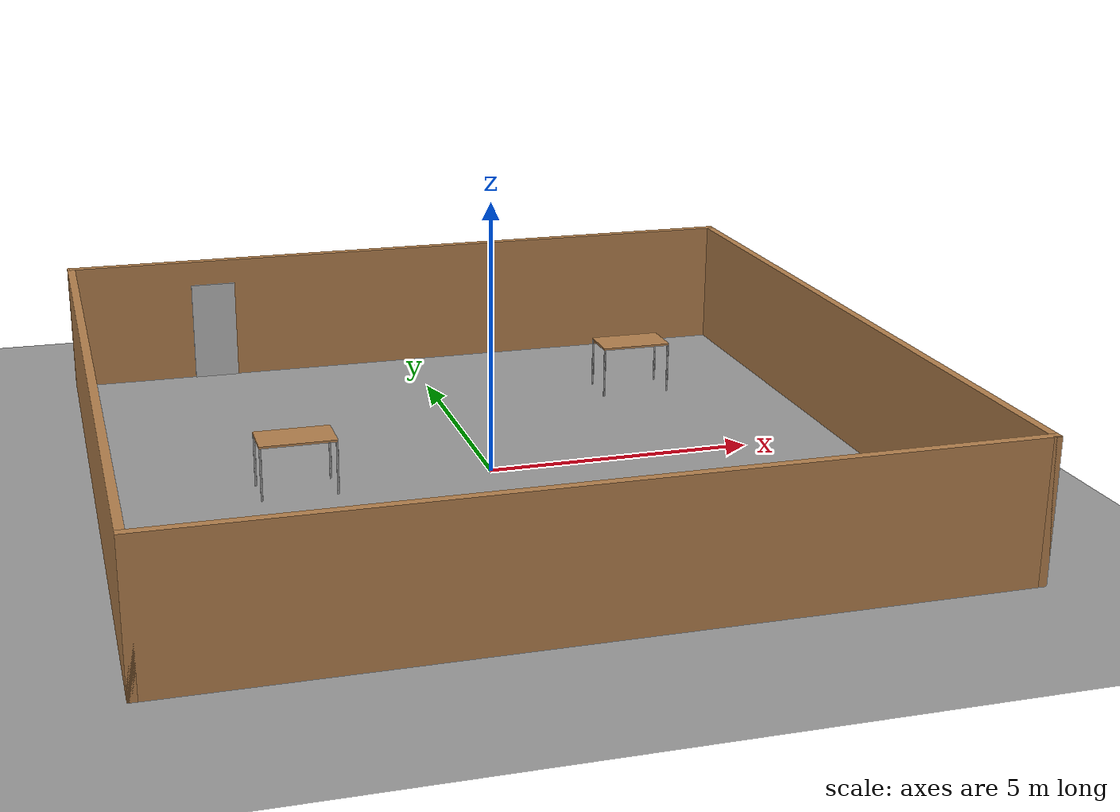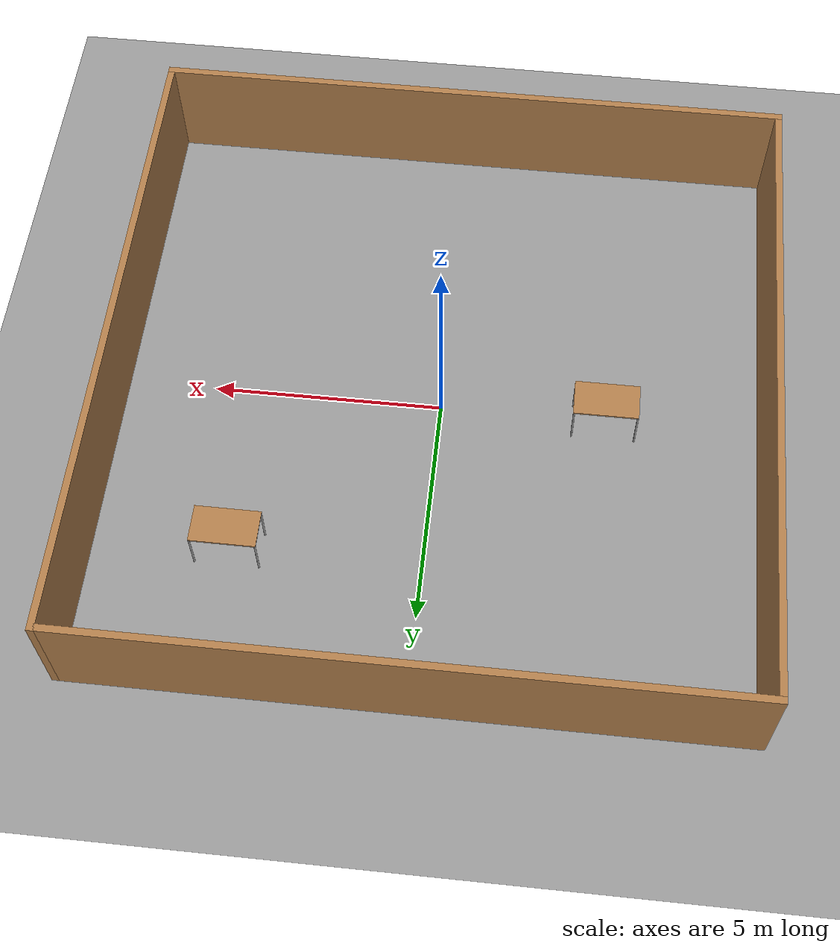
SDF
<sdf version="1.6">
 <world name="default">
  <light name="sun" type="directional">
   <pose>0 0 10 0 -0 0</pose>
   <diffuse>0.8 0.8 0.8 1</diffuse>
   <specular>0.1 0.1 0.1 1</specular>
   <attenuation>
    <range>1000</range>
    <constant>0.9</constant>
    <linear>0.01</linear>
    <quadratic>0.001</quadratic>
   </attenuation>
   <direction>-0.5 0.5 -1</direction>
  </light>
  <gravity>0 0 -9.8</gravity>
  <magnetic_field>6e-06 2.3e-05 -4.2e-05</magnetic_field>
  <atmosphere type="adiabatic"/>
  <physics name="default_physics" default="0" type="ode">
   <max_step_size>0.001</max_step_size>
   <real_time_factor>1</real_time_factor>
   <real_time_update_rate>1000</real_time_update_rate>
  </physics>
  <scene><ambient>0.4 0.4 0.4 1</ambient><background>0.7 0.7 0.7 1</background><shadows>1</shadows></scene>
  <spherical_coordinates>
   <surface_model>EARTH_WGS84</surface_model>
   <latitude_deg>0</latitude_deg>
   <longitude_deg>0</longitude_deg>
   <elevation>0</elevation>
   <heading_deg>0</heading_deg>
  </spherical_coordinates>
  <model name="Untitled4">
   <link name="Wall_10">
    <collision name="Wall_10_Collision">
     <geometry><box><size>14.15 0.15 2.5</size></box></geometry>
     <pose>0 0 1.25 0 -0 0</pose>
    </collision>
    <visual name="Wall_10_Visual">
     <pose>0 0 1.25 0 -0 0</pose>
     <geometry><box><size>14.15 0.15 2.5</size></box></geometry>
     <material>
      <script><uri>file://media/materials/scripts/gazebo.material</uri><name>Gazebo/Wood</name></script>
      <ambient>1 1 1 1</ambient>
     </material>
    </visual>
    <pose>-7 0 0 0 0 -1.5708</pose>
   </link>
   <link name="Wall_11">
    <collision name="Wall_11_Collision">
     <geometry><box><size>14.15 0.15 2.5</size></box></geometry>
     <pose>0 0 1.25 0 -0 0</pose>
    </collision>
    <visual name="Wall_11_Visual">
     <pose>0 0 1.25 0 -0 0</pose>
     <geometry><box><size>14.15 0.15 2.5</size></box></geometry>
     <material>
      <script><uri>file://media/materials/scripts/gazebo.material</uri><name>Gazebo/Wood</name></script>
      <ambient>1 1 1 1</ambient>
     </material>
    </visual>
    <pose>0 -7 0 0 -0 0</pose>
   </link>
   <link name="Wall_12">
    <collision name="Wall_12_Collision">
     <geometry><box><size>14.15 0.15 2.5</size></box></geometry>
     <pose>0 0 1.25 0 -0 0</pose>
    </collision>
    <visual name="Wall_12_Visual">
     <pose>0 0 1.25 0 -0 0</pose>
     <geometry><box><size>14.15 0.15 2.5</size></box></geometry>
     <material>
      <script><uri>file://media/materials/scripts/gazebo.material</uri><name>Gazebo/Wood</name></script>
      <ambient>1 1 1 1</ambient>
     </material>
    </visual>
    <pose>7 0 0 0 -0 1.5708</pose>
   </link>
   <link name="Wall_13">
    <collision name="Wall_13_Collision">
     <geometry><box><size>14.15 0.15 2.5</size></box></geometry>
     <pose>0 0 1.25 0 -0 0</pose>
    </collision>
    <visual name="Wall_13_Visual">
     <pose>0 0 1.25 0 -0 0</pose>
     <geometry><box><size>14.15 0.15 2.5</size></box></geometry>
     <material>
      <script><uri>file://media/materials/scripts/gazebo.material</uri><name>Gazebo/Wood</name></script>
      <ambient>1 1 1 1</ambient>
     </material>
    </visual>
    <pose>0 7 0 0 -0 3.14159</pose>
   </link>
   <static>1</static>
  </model>
  <model name="table">
   <static>0</static>
   <link name="link">
    <collision name="surface">
     <pose>0 0 1 0 -0 0</pose>
     <geometry><box><size>1.5 0.8 0.03</size></box></geometry>
     <surface><friction><ode><mu>0.6</mu><mu2>0.6</mu2></ode></friction></surface>
    </collision>
    <visual name="visual1">
     <pose>0 0 1 0 -0 0</pose>
     <geometry><box><size>1.4 0.8 0.04</size></box></geometry>
     <material>
      <script><uri>file://media/materials/scripts/gazebo.material</uri><name>Gazebo/Wood</name></script>
     </material>
    </visual>
    <collision name="front_left_leg">
     <pose>0.68 0.38 0.5 0 -0 0</pose>
     <geometry><cylinder><radius>0.02</radius><length>1</length></cylinder></geometry>
    </collision>
    <visual name="front_left_leg">
     <pose>0.68 0.38 0.5 0 -0 0</pose>
     <geometry><cylinder><radius>0.02</radius><length>1</length></cylinder></geometry>
     <material>
      <script><uri>file://media/materials/scripts/gazebo.material</uri><name>Gazebo/Grey</name></script>
     </material>
    </visual>
    <collision name="front_right_leg">
     <pose>0.68 -0.38 0.5 0 -0 0</pose>
     <geometry><cylinder><radius>0.02</radius><length>1</length></cylinder></geometry>
    </collision>
    <visual name="front_right_leg">
     <pose>0.68 -0.38 0.5 0 -0 0</pose>
     <geometry><cylinder><radius>0.02</radius><length>1</length></cylinder></geometry>
     <material>
      <script><uri>file://media/materials/scripts/gazebo.material</uri><name>Gazebo/Grey</name></script>
     </material>
    </visual>
    <collision name="back_right_leg">
     <pose>-0.68 -0.38 0.5 0 -0 0</pose>
     <geometry><cylinder><radius>0.02</radius><length>1</length></cylinder></geometry>
    </collision>
    <visual name="back_right_leg">
     <pose>-0.68 -0.38 0.5 0 -0 0</pose>
     <geometry><cylinder><radius>0.02</radius><length>1</length></cylinder></geometry>
     <material>
      <script><uri>file://media/materials/scripts/gazebo.material</uri><name>Gazebo/Grey</name></script>
     </material>
    </visual>
    <collision name="back_left_leg">
     <pose>-0.68 0.38 0.5 0 -0 0</pose>
     <geometry><cylinder><radius>0.02</radius><length>1</length></cylinder></geometry>
    </collision>
    <visual name="back_left_leg">
     <pose>-0.68 0.38 0.5 0 -0 0</pose>
     <geometry><cylinder><radius>0.02</radius><length>1</length></cylinder></geometry>
     <material>
      <script><uri>file://media/materials/scripts/gazebo.material</uri><name>Gazebo/Grey</name></script>
     </material>
    </visual>
    <inertial>
     <inertia><ixx>1</ixx><ixy>0</ixy><ixz>0</ixz><iyy>1</iyy><iyz>0</iyz><izz>1</izz></inertia>
     <mass>1</mass>
    </inertial>
   </link>
   <pose>-3.57029 0.018483 -6e-06 0 -0 0</pose>
  </model>
  <model name="table_0">
   <static>0</static>
   <link name="link">
    <collision name="surface">
     <pose>0 0 1 0 -0 0</pose>
     <geometry><box><size>1.5 0.8 0.03</size></box></geometry>
     <surface><friction><ode><mu>0.6</mu><mu2>0.6</mu2></ode></friction></surface>
    </collision>
    <visual name="visual1">
     <pose>0 0 1 0 -0 0</pose>
     <geometry><box><size>1.4 0.8 0.04</size></box></geometry>
     <material>
      <script><uri>file://media/materials/scripts/gazebo.material</uri><name>Gazebo/Wood</name></script>
     </material>
    </visual>
    <collision name="front_left_leg">
     <pose>0.68 0.38 0.5 0 -0 0</pose>
     <geometry><cylinder><radius>0.02</radius><length>1</length></cylinder></geometry>
    </collision>
    <visual name="front_left_leg">
     <pose>0.68 0.38 0.5 0 -0 0</pose>
     <geometry><cylinder><radius>0.02</radius><length>1</length></cylinder></geometry>
     <material>
      <script><uri>file://media/materials/scripts/gazebo.material</uri><name>Gazebo/Grey</name></script>
     </material>
    </visual>
    <collision name="front_right_leg">
     <pose>0.68 -0.38 0.5 0 -0 0</pose>
     <geometry><cylinder><radius>0.02</radius><length>1</length></cylinder></geometry>
    </collision>
    <visual name="front_right_leg">
     <pose>0.68 -0.38 0.5 0 -0 0</pose>
     <geometry><cylinder><radius>0.02</radius><length>1</length></cylinder></geometry>
     <material>
      <script><uri>file://media/materials/scripts/gazebo.material</uri><name>Gazebo/Grey</name></script>
     </material>
    </visual>
    <collision name="back_right_leg">
     <pose>-0.68 -0.38 0.5 0 -0 0</pose>
     <geometry><cylinder><radius>0.02</radius><length>1</length></cylinder></geometry>
    </collision>
    <visual name="back_right_leg">
     <pose>-0.68 -0.38 0.5 0 -0 0</pose>
     <geometry><cylinder><radius>0.02</radius><length>1</length></cylinder></geometry>
     <material>
      <script><uri>file://media/materials/scripts/gazebo.material</uri><name>Gazebo/Grey</name></script>
     </material>
    </visual>
    <collision name="back_left_leg">
     <pose>-0.68 0.38 0.5 0 -0 0</pose>
     <geometry><cylinder><radius>0.02</radius><length>1</length></cylinder></geometry>
    </collision>
    <visual name="back_left_leg">
     <pose>-0.68 0.38 0.5 0 -0 0</pose>
     <geometry><cylinder><radius>0.02</radius><length>1</length></cylinder></geometry>
     <material>
      <script><uri>file://media/materials/scripts/gazebo.material</uri><name>Gazebo/Grey</name></script>
     </material>
    </visual>
    <inertial>
     <inertia><ixx>1</ixx><ixy>0</ixy><ixz>0</ixz><iyy>1</iyy><iyz>0</iyz><izz>1</izz></inertia>
     <mass>1</mass>
    </inertial>
   </link>
   <pose>4.04129 3.82658 -9e-06 2e-06 -0 -0.003461</pose>
  </model>
  <model name="ground_plane_0">
   <static>1</static>
   <link name="link">
    <collision name="collision">
     <geometry><plane><normal>0 0 1</normal><size>100 100</size></plane></geometry>
     <surface><friction><ode><mu>100</mu><mu2>50</mu2></ode></friction></surface>
    </collision>
    <visual name="visual">
     <cast_shadows>0</cast_shadows>
     <geometry><plane><normal>0 0 1</normal><size>100 100</size></plane></geometry>
     <material>
      <script><uri>file://media/materials/scripts/gazebo.material</uri><name>Gazebo/Grey</name></script>
     </material>
    </visual>
   </link>
   <pose>-2.68051 -0.774741 0 0 -0 0</pose>
  </model>
  <model name="door">
   <link name="link_0">
    <visual name="visual">
     <pose>0 0 1 0 -0 0</pose>
     <geometry><box><size>0.9 0.15 2</size></box></geometry>
     <material>
      <script>
       <uri>model://door/materials/scripts</uri>
       <uri>model://door/materials/textures</uri>
       <name>door</name>
      </script>
     </material>
    </visual>
    <collision name="collision">
     <pose>0 0 1 0 -0 0</pose>
     <geometry><box><size>0.9 0.15 2</size></box></geometry>
    </collision>
   </link>
   <static>1</static>
   <pose>-4.14274 6.97616 0 0 -0 0</pose>
  </model>
 </world>
</sdf>
